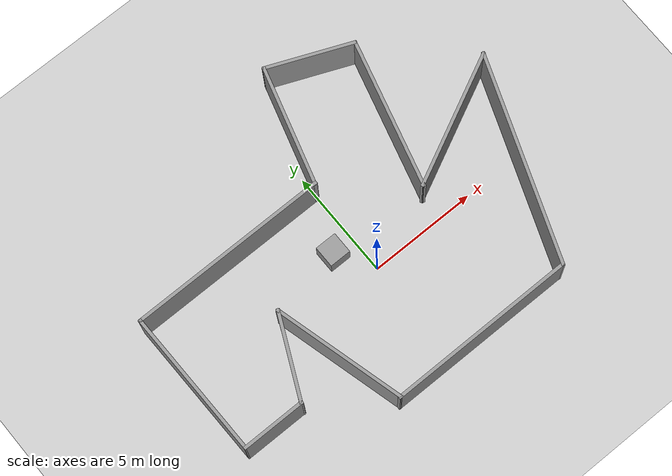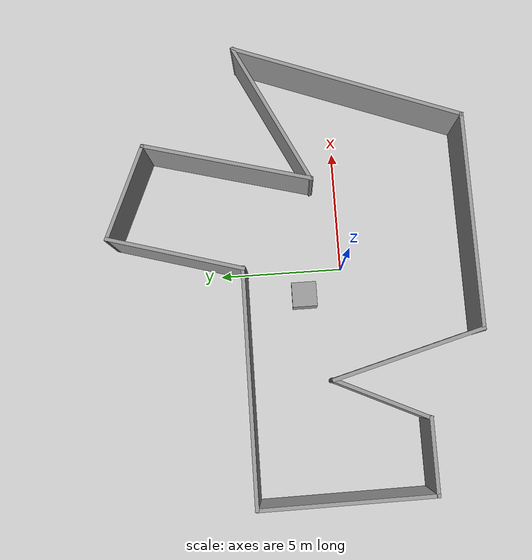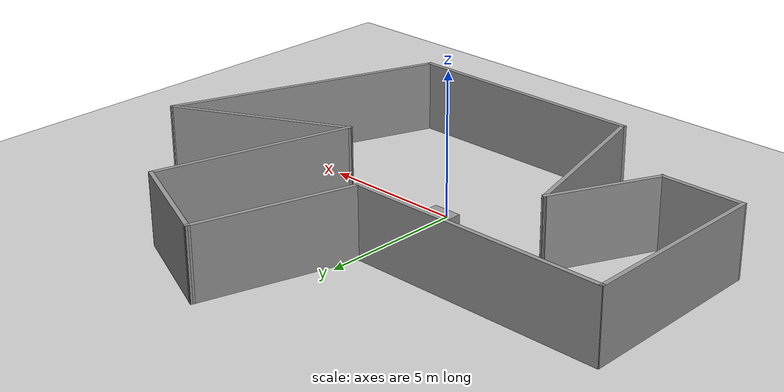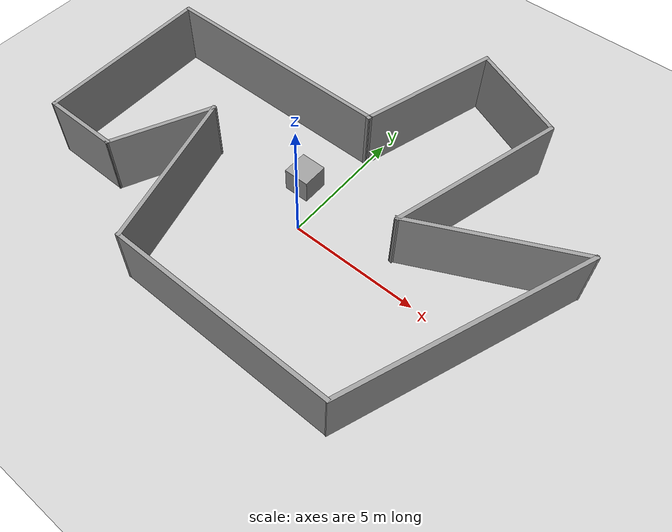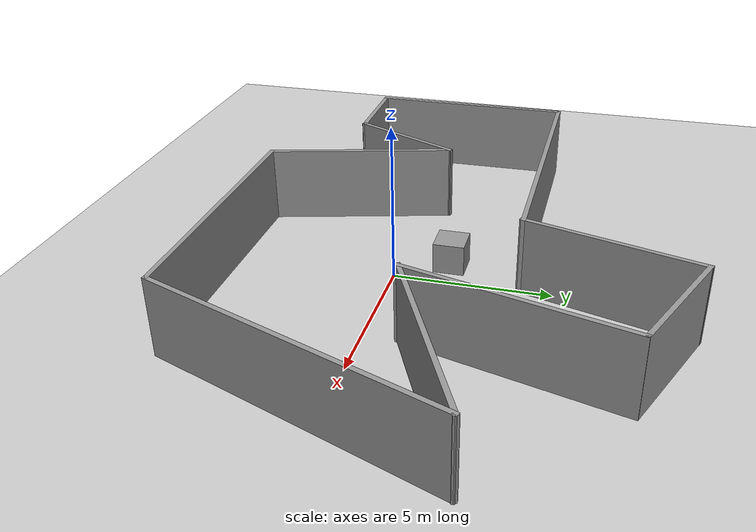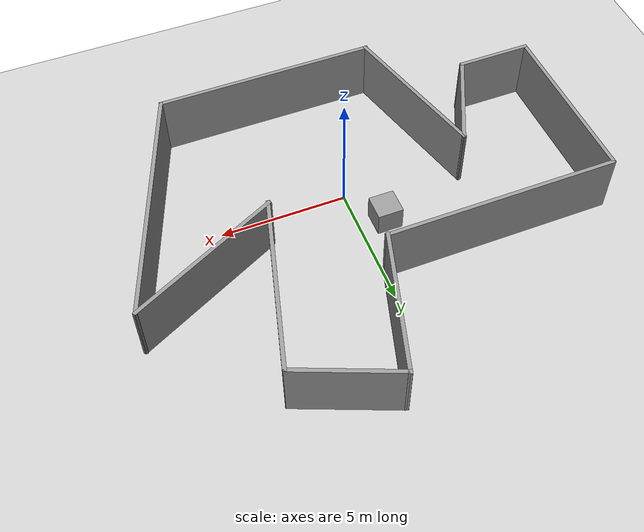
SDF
<sdf version="1.6">
 <world name="default">
  <light name="sun" type="directional">
   <pose>0 0 10 0 -0 0</pose>
   <diffuse>0.8 0.8 0.8 1</diffuse>
   <specular>0.2 0.2 0.2 1</specular>
   <attenuation>
    <range>1000</range>
    <constant>0.9</constant>
    <linear>0.01</linear>
    <quadratic>0.001</quadratic>
   </attenuation>
   <direction>-0.5 0.1 -0.9</direction>
  </light>
  <model name="ground_plane">
   <static>1</static>
   <link name="link">
    <collision name="collision">
     <geometry><plane><normal>0 0 1</normal><size>100 100</size></plane></geometry>
     <surface>
      <contact><collide_bitmask>65535</collide_bitmask></contact>
      <friction><ode><mu>100</mu><mu2>50</mu2></ode></friction>
     </surface>
    </collision>
    <visual name="visual">
     <cast_shadows>0</cast_shadows>
     <geometry><plane><normal>0 0 1</normal><size>100 100</size></plane></geometry>
     <material>
      <script><uri>file://media/materials/scripts/gazebo.material</uri><name>Gazebo/Grey</name></script>
     </material>
    </visual>
   </link>
  </model>
  <gravity>0 0 -9.8</gravity>
  <magnetic_field>6e-06 2.3e-05 -4.2e-05</magnetic_field>
  <atmosphere type="adiabatic"/>
  <physics name="default_physics" default="0" type="ode">
   <max_step_size>0.001</max_step_size>
   <real_time_factor>1</real_time_factor>
   <real_time_update_rate>1000</real_time_update_rate>
  </physics>
  <scene><ambient>0.4 0.4 0.4 1</ambient><background>0.7 0.7 0.7 1</background><shadows>1</shadows></scene>
  <audio><device>default</device></audio>
  <spherical_coordinates>
   <surface_model>EARTH_WGS84</surface_model>
   <latitude_deg>0</latitude_deg>
   <longitude_deg>0</longitude_deg>
   <elevation>0</elevation>
   <heading_deg>0</heading_deg>
  </spherical_coordinates>
  <model name="simple_env_2">
   <pose>-0.076922 2.04225 0 0 -0 0</pose>
   <link name="Wall_31">
    <collision name="Wall_31_Collision">
     <geometry><box><size>8.75 0.15 2.5</size></box></geometry>
     <pose>0 0 1.25 0 -0 0</pose>
    </collision>
    <visual name="Wall_31_Visual">
     <pose>0 0 1.25 0 -0 0</pose>
     <geometry><box><size>8.75 0.15 2.5</size></box></geometry>
     <material>
      <script><uri>file://media/materials/scripts/gazebo.material</uri><name>Gazebo/Grey</name></script>
      <ambient>1 1 1 1</ambient>
     </material>
     <meta><layer>0</layer></meta>
    </visual>
    <pose>1.35505 -7.18023 0 0 -0 0</pose>
   </link>
   <link name="Wall_33">
    <collision name="Wall_33_Collision">
     <geometry><box><size>9.75965 0.15 2.5</size></box></geometry>
     <pose>0 0 1.25 0 -0 0</pose>
    </collision>
    <visual name="Wall_33_Visual">
     <pose>0 0 1.25 0 -0 0</pose>
     <geometry><box><size>9.75965 0.15 2.5</size></box></geometry>
     <material>
      <script><uri>file://media/materials/scripts/gazebo.material</uri><name>Gazebo/Grey</name></script>
      <ambient>1 1 1 1</ambient>
     </material>
     <meta><layer>0</layer></meta>
    </visual>
    <pose>7.36557 -2.68144 0 0 -0 1.21196</pose>
   </link>
   <link name="Wall_34">
    <collision name="Wall_34_Collision">
     <geometry><box><size>6.43257 0.15 2.5</size></box></geometry>
     <pose>0 0 1.25 0 -0 0</pose>
    </collision>
    <visual name="Wall_34_Visual">
     <pose>0 0 1.25 0 -0 0</pose>
     <geometry><box><size>6.43257 0.15 2.5</size></box></geometry>
     <material>
      <script><uri>file://media/materials/scripts/gazebo.material</uri><name>Gazebo/Grey</name></script>
      <ambient>1 1 1 1</ambient>
     </material>
     <meta><layer>0</layer></meta>
    </visual>
    <pose>6.23641 0.426397 0 0 -0 -2.68288</pose>
   </link>
   <link name="Wall_35">
    <collision name="Wall_35_Collision">
     <geometry><box><size>7 0.15 2.5</size></box></geometry>
     <pose>0 0 1.25 0 -0 0</pose>
    </collision>
    <visual name="Wall_35_Visual">
     <pose>0 0 1.25 0 -0 0</pose>
     <geometry><box><size>7 0.15 2.5</size></box></geometry>
     <material>
      <script><uri>file://media/materials/scripts/gazebo.material</uri><name>Gazebo/Grey</name></script>
      <ambient>1 1 1 1</ambient>
     </material>
     <meta><layer>0</layer></meta>
    </visual>
    <pose>4.32945 2.32062 0 0 -0 1.309</pose>
   </link>
   <link name="Wall_36">
    <collision name="Wall_36_Collision">
     <geometry><box><size>4.10791 0.15 2.5</size></box></geometry>
     <pose>0 0 1.25 0 -0 0</pose>
    </collision>
    <visual name="Wall_36_Visual">
     <pose>0 0 1.25 0 -0 0</pose>
     <geometry><box><size>4.10791 0.15 2.5</size></box></geometry>
     <material>
      <script><uri>file://media/materials/scripts/gazebo.material</uri><name>Gazebo/Grey</name></script>
      <ambient>1 1 1 1</ambient>
     </material>
     <meta><layer>0</layer></meta>
    </visual>
    <pose>3.36695 6.41535 0 0 -0 2.74561</pose>
   </link>
   <link name="Wall_37">
    <collision name="Wall_37_Collision">
     <geometry><box><size>5.63487 0.15 2.5</size></box></geometry>
     <pose>0 0 1.25 0 -0 0</pose>
    </collision>
    <visual name="Wall_37_Visual">
     <pose>0 0 1.25 0 -0 0</pose>
     <geometry><box><size>5.63487 0.15 2.5</size></box></geometry>
     <material>
      <script><uri>file://media/materials/scripts/gazebo.material</uri><name>Gazebo/Grey</name></script>
      <ambient>1 1 1 1</ambient>
     </material>
     <meta><layer>0</layer></meta>
    </visual>
    <pose>0.78174 4.54346 0 0 -0 -1.85137</pose>
   </link>
   <link name="Wall_45">
    <collision name="Wall_45_Collision">
     <geometry><box><size>9.25 0.15 2.5</size></box></geometry>
     <pose>0 0 1.25 0 -0 0</pose>
    </collision>
    <visual name="Wall_45_Visual">
     <pose>0 0 1.25 0 -0 0</pose>
     <geometry><box><size>9.25 0.15 2.5</size></box></geometry>
     <material>
      <script><uri>file://media/materials/scripts/gazebo.material</uri><name>Gazebo/Grey</name></script>
      <ambient>1 1 1 1</ambient>
     </material>
     <meta><layer>0</layer></meta>
    </visual>
    <pose>-4.50452 1.93139 0 0 -0 3.14159</pose>
   </link>
   <link name="Wall_46">
    <collision name="Wall_46_Collision">
     <geometry><box><size>6.88882 0.15 2.5</size></box></geometry>
     <pose>0 0 1.25 0 -0 0</pose>
    </collision>
    <visual name="Wall_46_Visual">
     <pose>0 0 1.25 0 -0 0</pose>
     <geometry><box><size>6.88882 0.15 2.5</size></box></geometry>
     <material>
      <script><uri>file://media/materials/scripts/gazebo.material</uri><name>Gazebo/Grey</name></script>
      <ambient>1 1 1 1</ambient>
     </material>
     <meta><layer>0</layer></meta>
    </visual>
    <pose>-9.04295 -1.46113 0 0 -0 -1.5605</pose>
   </link>
   <link name="Wall_47">
    <collision name="Wall_47_Collision">
     <geometry><box><size>3 0.15 2.5</size></box></geometry>
     <pose>0 0 1.25 0 -0 0</pose>
    </collision>
    <visual name="Wall_47_Visual">
     <pose>0 0 1.25 0 -0 0</pose>
     <geometry><box><size>3 0.15 2.5</size></box></geometry>
     <material>
      <script><uri>file://media/materials/scripts/gazebo.material</uri><name>Gazebo/Grey</name></script>
      <ambient>1 1 1 1</ambient>
     </material>
     <meta><layer>0</layer></meta>
    </visual>
    <pose>-7.58326 -4.83052 0 0 -0 0</pose>
   </link>
   <link name="Wall_48">
    <collision name="Wall_48_Collision">
     <geometry><box><size>4.0611 0.15 2.5</size></box></geometry>
     <pose>0 0 1.25 0 -0 0</pose>
    </collision>
    <visual name="Wall_48_Visual">
     <pose>0 0 1.25 0 -0 0</pose>
     <geometry><box><size>4.0611 0.15 2.5</size></box></geometry>
     <material>
      <script><uri>file://media/materials/scripts/gazebo.material</uri><name>Gazebo/Grey</name></script>
      <ambient>1 1 1 1</ambient>
     </material>
     <meta><layer>0</layer></meta>
    </visual>
    <pose>-5.32944 -3.0593 0 0 -0 1.13313</pose>
   </link>
   <link name="Wall_49">
    <collision name="Wall_49_Collision">
     <geometry><box><size>6.25 0.15 2.5</size></box></geometry>
     <pose>0 0 1.25 0 -0 0</pose>
    </collision>
    <visual name="Wall_49_Visual">
     <pose>0 0 1.25 0 -0 0</pose>
     <geometry><box><size>6.25 0.15 2.5</size></box></geometry>
     <material>
      <script><uri>file://media/materials/scripts/gazebo.material</uri><name>Gazebo/Grey</name></script>
      <ambient>1 1 1 1</ambient>
     </material>
     <meta><layer>0</layer></meta>
    </visual>
    <pose>-3.71122 -4.23415 0 0 -0 -1.309</pose>
   </link>
   <static>1</static>
  </model>
  <model name="unit_box">
   <pose>-1.04739 1.61873 0.5 0 -0 0</pose>
   <link name="link">
    <inertial>
     <mass>1</mass>
     <inertia>
      <ixx>0.166667</ixx>
      <ixy>0</ixy>
      <ixz>0</ixz>
      <iyy>0.166667</iyy>
      <iyz>0</iyz>
      <izz>0.166667</izz>
     </inertia>
    </inertial>
    <collision name="collision"><geometry><box><size>1 1 1</size></box></geometry></collision>
    <visual name="visual">
     <geometry><box><size>1 1 1</size></box></geometry>
     <material>
      <script><name>Gazebo/Grey</name><uri>file://media/materials/scripts/gazebo.material</uri></script>
     </material>
    </visual>
   </link>
  </model>
 </world>
</sdf>
